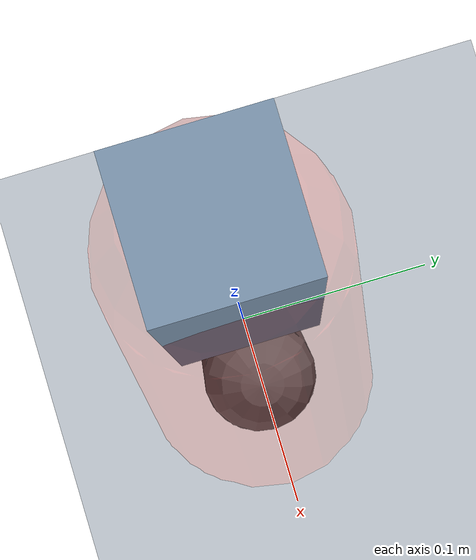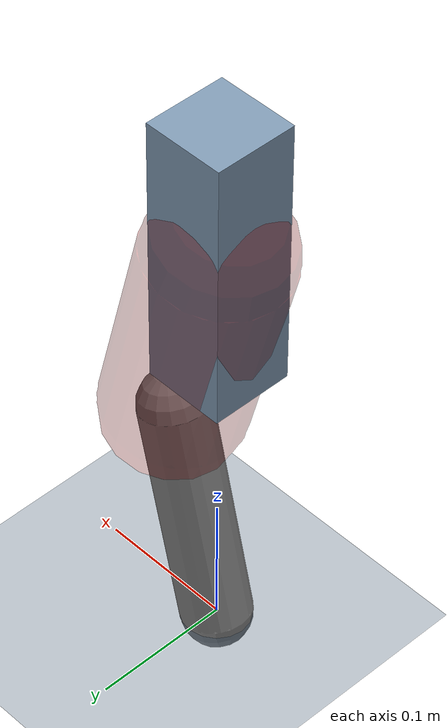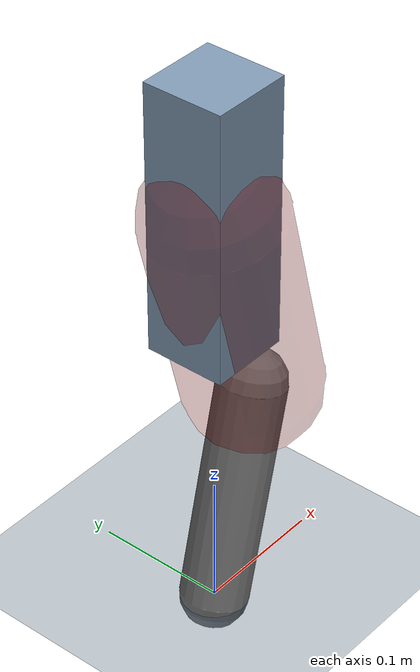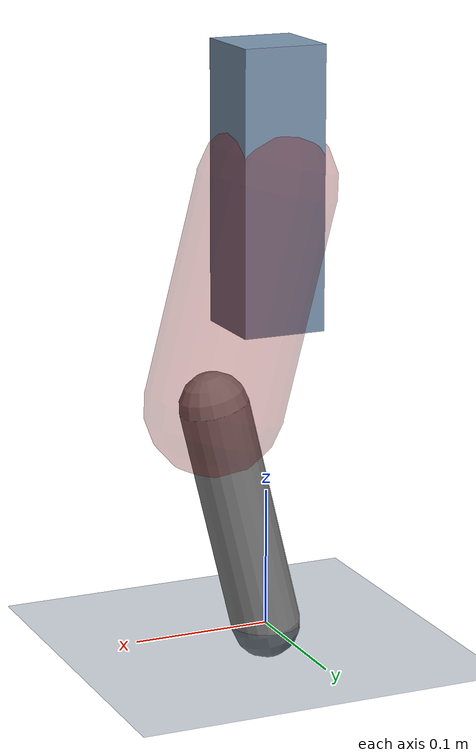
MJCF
<mujoco model="Hopper2D">
	<compiler inertiafromgeom="true" angle="radian" />
	<option timestep="0.001" integrator="implicit" cone="elliptic" solver="Newton" tolerance="1e-10" />

	<default>
		<geom contype="1" conaffinity="1" condim="3" friction="2 0.005 0.0001" solref="0.005 1" />
		<joint limited="true" damping="0.1" />
	</default>

	<asset>
		<texture name="skybox" type="skybox" builtin="gradient" rgb1=".4 .6 .8" rgb2="0 0 0" width="800" height="800" />
		<texture name="grid" type="2d" builtin="checker" rgb1=".1 .2 .3" rgb2=".2 .3 .4" width="300" height="300" mark="edge" markrgb=".2 .3 .4" />
		<material name="ground" texture="grid" texrepeat="1 1" texuniform="true" reflectance="0.1" />
		<material name="leg" rgba="0.5 0.6 0.7 1" />
	</asset>

	<worldbody>

		<geom name="floor" type="plane" size="5 5 0.25" material="ground" />

		<light directional="false" diffuse="0.8 0.8 0.8" specular="0.3 0.3 0.3" pos="0 0 2" dir="0 0 -1" />
		<light mode="targetbodycom" target="base" directional="false" diffuse="0.8 0.8 0.8" specular="0.3 0.3 0.3" pos="0 0 2" dir="0 0 -1" />

		<camera name="fixed" pos="0 -2 1" xyaxes="1 0 0 0 0 1" />
		<camera name="tracking" mode="trackcom" pos="0 -3 1" />

		<body name="root" pos="0 0 0.32084714452182966">
			<joint name="slide_x" type="slide" axis="1 0 0" range="-100 100" />
			<joint name="slide_z" type="slide" axis="0 0 1" range="0 10" />

			<body name="base" pos="0 0 0">
				<geom name="torso" type="box" size="0.03 0.03 0.1" mass="3.137" material="leg" />

				<body name="link1" pos="0 0 0" euler="0 1.3150053788711644 0">
					<joint type="hinge" axis="0 -1 0" pos="0 0 0" name="hinge1" limited="true" range="-3.14 3.14" stiffness="0" damping="0.1" />
					<geom name="thigh" type="capsule" fromto="0 0 0 0.15942226459326628 0 0" size="0.05" rgba="0.5 0 0 0.3" mass="0.630913435023839" />

					<body name="link2" pos="0.15942226459326628 0 0" euler="0 0.49331375749850204 0">
						<joint type="hinge" axis="0 -1 0" pos="0 0 0" name="hinge2" limited="true" range="-3.14 3.14" stiffness="0" damping="0.1" />
						<geom name="shank" type="capsule" fromto="0 0 0 0.1714248799285634 0 0" size="0.025" mass="0.37648239193570704" />

					</body>
				</body>
			</body>
		</body>
	</worldbody>

	<actuator>
		<motor name="torque1" joint="hinge1" ctrlrange="-147.45824436209892 147.45824436209892" ctrllimited="true" gear="1" />
		<motor name="torque2" joint="hinge2" ctrlrange="-95.48317643390766 95.48317643390766" ctrllimited="true" gear="1" />
	</actuator>
</mujoco>
